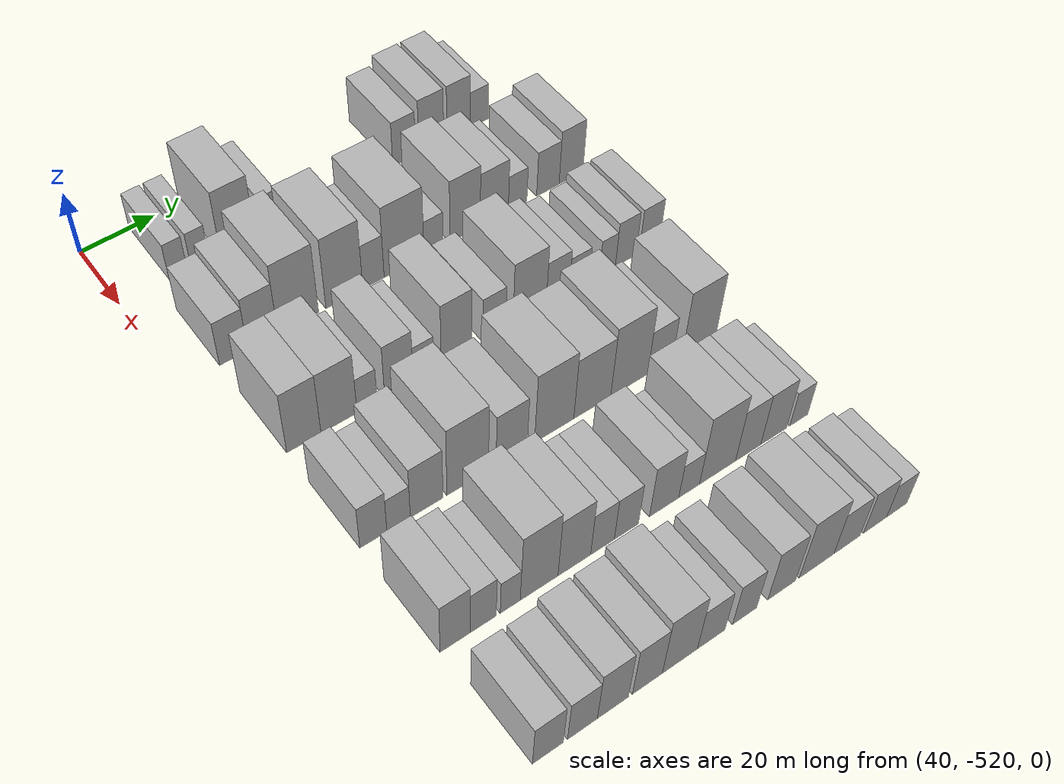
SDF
<sdf version="1.6">
 <world name="default">
  <model name="building_1">
   <static>1</static>
   <pose>50.0000 -504.5289 0 0.000000 0.000000 0.000000</pose>
   <link name="link">
    <pose>0 0 6.00 0 0 0</pose>
    <collision name="collision"><geometry><box><size>20.0000 4.9422 12.0000</size></box></geometry></collision>
    <visual name="visual">
     <cast_shadows>0</cast_shadows>
     <geometry><box><size>20.0000 4.9422 12.0000</size></box></geometry>
     <material>
      <script>
       <uri>model://HANNAS_wall/materials/scripts</uri>
       <uri>model://HANNAS_wall/materials/textures</uri>
       <name>vrc/HANNAS_wall</name>
      </script>
     </material>
    </visual>
   </link>
  </model>
  <model name="building_2">
   <static>1</static>
   <pose>50.0000 -498.5857 0 0.000000 0.000000 0.000000</pose>
   <link name="link">
    <pose>0 0 6.00 0 0 0</pose>
    <collision name="collision"><geometry><box><size>20.0000 4.9442 12.0000</size></box></geometry></collision>
    <visual name="visual">
     <cast_shadows>0</cast_shadows>
     <geometry><box><size>20.0000 4.9442 12.0000</size></box></geometry>
     <material>
      <script>
       <uri>model://HANNAS_wall/materials/scripts</uri>
       <uri>model://HANNAS_wall/materials/textures</uri>
       <name>vrc/HANNAS_wall</name>
      </script>
     </material>
    </visual>
   </link>
  </model>
  <model name="building_3">
   <static>1</static>
   <pose>50.0000 -488.2984 0 0.000000 0.000000 0.000000</pose>
   <link name="link">
    <pose>0 0 10.50 0 0 0</pose>
    <collision name="collision"><geometry><box><size>20.0000 9.6305 21.0000</size></box></geometry></collision>
    <visual name="visual">
     <cast_shadows>0</cast_shadows>
     <geometry><box><size>20.0000 9.6305 21.0000</size></box></geometry>
     <material>
      <script>
       <uri>model://HANNAS_wall/materials/scripts</uri>
       <uri>model://HANNAS_wall/materials/textures</uri>
       <name>vrc/HANNAS_wall</name>
      </script>
     </material>
    </visual>
   </link>
  </model>
  <model name="building_4">
   <static>1</static>
   <pose>50.0000 -478.9975 0 0.000000 0.000000 0.000000</pose>
   <link name="link">
    <pose>0 0 6.00 0 0 0</pose>
    <collision name="collision"><geometry><box><size>20.0000 4.9714 12.0000</size></box></geometry></collision>
    <visual name="visual">
     <cast_shadows>0</cast_shadows>
     <geometry><box><size>20.0000 4.9714 12.0000</size></box></geometry>
     <material>
      <script>
       <uri>model://HANNAS_wall/materials/scripts</uri>
       <uri>model://HANNAS_wall/materials/textures</uri>
       <name>vrc/HANNAS_wall</name>
      </script>
     </material>
    </visual>
   </link>
  </model>
  <model name="building_5">
   <static>1</static>
   <pose>50.0000 -440.1124 0 0.000000 0.000000 0.000000</pose>
   <link name="link">
    <pose>0 0 7.50 0 0 0</pose>
    <collision name="collision"><geometry><box><size>20.0000 6.9329 15.0000</size></box></geometry></collision>
    <visual name="visual">
     <cast_shadows>0</cast_shadows>
     <geometry><box><size>20.0000 6.9329 15.0000</size></box></geometry>
     <material>
      <script>
       <uri>model://HANNAS_wall/materials/scripts</uri>
       <uri>model://HANNAS_wall/materials/textures</uri>
       <name>vrc/HANNAS_wall</name>
      </script>
     </material>
    </visual>
   </link>
  </model>
  <model name="building_6">
   <static>1</static>
   <pose>50.0000 -431.8344 0 0.000000 0.000000 0.000000</pose>
   <link name="link">
    <pose>0 0 9.00 0 0 0</pose>
    <collision name="collision"><geometry><box><size>20.0000 7.6229 18.0000</size></box></geometry></collision>
    <visual name="visual">
     <cast_shadows>0</cast_shadows>
     <geometry><box><size>20.0000 7.6229 18.0000</size></box></geometry>
     <material>
      <script>
       <uri>model://HANNAS_wall/materials/scripts</uri>
       <uri>model://HANNAS_wall/materials/textures</uri>
       <name>vrc/HANNAS_wall</name>
      </script>
     </material>
    </visual>
   </link>
  </model>
  <model name="building_7">
   <static>1</static>
   <pose>50.0000 -423.3520 0 0.000000 0.000000 0.000000</pose>
   <link name="link">
    <pose>0 0 9.00 0 0 0</pose>
    <collision name="collision"><geometry><box><size>20.0000 7.3419 18.0000</size></box></geometry></collision>
    <visual name="visual">
     <cast_shadows>0</cast_shadows>
     <geometry><box><size>20.0000 7.3419 18.0000</size></box></geometry>
     <material>
      <script>
       <uri>model://HANNAS_wall/materials/scripts</uri>
       <uri>model://HANNAS_wall/materials/textures</uri>
       <name>vrc/HANNAS_wall</name>
      </script>
     </material>
    </visual>
   </link>
  </model>
  <model name="building_8">
   <static>1</static>
   <pose>50.0000 -416.8708 0 0.000000 0.000000 0.000000</pose>
   <link name="link">
    <pose>0 0 6.00 0 0 0</pose>
    <collision name="collision"><geometry><box><size>20.0000 5.6204 12.0000</size></box></geometry></collision>
    <visual name="visual">
     <cast_shadows>0</cast_shadows>
     <geometry><box><size>20.0000 5.6204 12.0000</size></box></geometry>
     <material>
      <script>
       <uri>model://HANNAS_wall/materials/scripts</uri>
       <uri>model://HANNAS_wall/materials/textures</uri>
       <name>vrc/HANNAS_wall</name>
      </script>
     </material>
    </visual>
   </link>
  </model>
  <model name="building_118">
   <static>1</static>
   <pose>79.0000 -506.3099 0 0.000000 0.000000 0.000000</pose>
   <link name="link">
    <pose>0 0 7.50 0 0 0</pose>
    <collision name="collision"><geometry><box><size>20.0000 7.3802 15.0000</size></box></geometry></collision>
    <visual name="visual">
     <cast_shadows>0</cast_shadows>
     <geometry><box><size>20.0000 7.3802 15.0000</size></box></geometry>
     <material>
      <script>
       <uri>model://HANNAS_wall/materials/scripts</uri>
       <uri>model://HANNAS_wall/materials/textures</uri>
       <name>vrc/HANNAS_wall</name>
      </script>
     </material>
    </visual>
   </link>
  </model>
  <model name="building_119">
   <static>1</static>
   <pose>79.0000 -498.6249 0 0.000000 0.000000 0.000000</pose>
   <link name="link">
    <pose>0 0 9.00 0 0 0</pose>
    <collision name="collision"><geometry><box><size>20.0000 7.9898 18.0000</size></box></geometry></collision>
    <visual name="visual">
     <cast_shadows>0</cast_shadows>
     <geometry><box><size>20.0000 7.9898 18.0000</size></box></geometry>
     <material>
      <script>
       <uri>model://HANNAS_wall/materials/scripts</uri>
       <uri>model://HANNAS_wall/materials/textures</uri>
       <name>vrc/HANNAS_wall</name>
      </script>
     </material>
    </visual>
   </link>
  </model>
  <model name="building_120">
   <static>1</static>
   <pose>79.0000 -489.1331 0 0.000000 0.000000 0.000000</pose>
   <link name="link">
    <pose>0 0 12.00 0 0 0</pose>
    <collision name="collision"><geometry><box><size>20.0000 10.9938 24.0000</size></box></geometry></collision>
    <visual name="visual">
     <cast_shadows>0</cast_shadows>
     <geometry><box><size>20.0000 10.9938 24.0000</size></box></geometry>
     <material>
      <script>
       <uri>model://HANNAS_wall/materials/scripts</uri>
       <uri>model://HANNAS_wall/materials/textures</uri>
       <name>vrc/HANNAS_wall</name>
      </script>
     </material>
    </visual>
   </link>
  </model>
  <model name="building_121">
   <static>1</static>
   <pose>79.0000 -476.5295 0 0.000000 0.000000 0.000000</pose>
   <link name="link">
    <pose>0 0 12.00 0 0 0</pose>
    <collision name="collision"><geometry><box><size>20.0000 10.2135 24.0000</size></box></geometry></collision>
    <visual name="visual">
     <cast_shadows>0</cast_shadows>
     <geometry><box><size>20.0000 10.2135 24.0000</size></box></geometry>
     <material>
      <script>
       <uri>model://HANNAS_wall/materials/scripts</uri>
       <uri>model://HANNAS_wall/materials/textures</uri>
       <name>vrc/HANNAS_wall</name>
      </script>
     </material>
    </visual>
   </link>
  </model>
  <model name="building_122">
   <static>1</static>
   <pose>79.0000 -468.4200 0 0.000000 0.000000 0.000000</pose>
   <link name="link">
    <pose>0 0 7.50 0 0 0</pose>
    <collision name="collision"><geometry><box><size>20.0000 6.0055 15.0000</size></box></geometry></collision>
    <visual name="visual">
     <cast_shadows>0</cast_shadows>
     <geometry><box><size>20.0000 6.0055 15.0000</size></box></geometry>
     <material>
      <script>
       <uri>model://HANNAS_wall/materials/scripts</uri>
       <uri>model://HANNAS_wall/materials/textures</uri>
       <name>vrc/HANNAS_wall</name>
      </script>
     </material>
    </visual>
   </link>
  </model>
  <model name="building_123">
   <static>1</static>
   <pose>79.0000 -459.7112 0 0.000000 0.000000 0.000000</pose>
   <link name="link">
    <pose>0 0 12.00 0 0 0</pose>
    <collision name="collision"><geometry><box><size>20.0000 11.4121 24.0000</size></box></geometry></collision>
    <visual name="visual">
     <cast_shadows>0</cast_shadows>
     <geometry><box><size>20.0000 11.4121 24.0000</size></box></geometry>
     <material>
      <script>
       <uri>model://HANNAS_wall/materials/scripts</uri>
       <uri>model://HANNAS_wall/materials/textures</uri>
       <name>vrc/HANNAS_wall</name>
      </script>
     </material>
    </visual>
   </link>
  </model>
  <model name="building_124">
   <static>1</static>
   <pose>79.0000 -451.2268 0 0.000000 0.000000 0.000000</pose>
   <link name="link">
    <pose>0 0 6.00 0 0 0</pose>
    <collision name="collision"><geometry><box><size>20.0000 5.5568 12.0000</size></box></geometry></collision>
    <visual name="visual">
     <cast_shadows>0</cast_shadows>
     <geometry><box><size>20.0000 5.5568 12.0000</size></box></geometry>
     <material>
      <script>
       <uri>model://HANNAS_wall/materials/scripts</uri>
       <uri>model://HANNAS_wall/materials/textures</uri>
       <name>vrc/HANNAS_wall</name>
      </script>
     </material>
    </visual>
   </link>
  </model>
  <model name="building_125">
   <static>1</static>
   <pose>79.0000 -441.9780 0 0.000000 0.000000 0.000000</pose>
   <link name="link">
    <pose>0 0 10.50 0 0 0</pose>
    <collision name="collision"><geometry><box><size>20.0000 8.9408 21.0000</size></box></geometry></collision>
    <visual name="visual">
     <cast_shadows>0</cast_shadows>
     <geometry><box><size>20.0000 8.9408 21.0000</size></box></geometry>
     <material>
      <script>
       <uri>model://HANNAS_wall/materials/scripts</uri>
       <uri>model://HANNAS_wall/materials/textures</uri>
       <name>vrc/HANNAS_wall</name>
      </script>
     </material>
    </visual>
   </link>
  </model>
  <model name="building_126">
   <static>1</static>
   <pose>79.0000 -433.2798 0 0.000000 0.000000 0.000000</pose>
   <link name="link">
    <pose>0 0 9.00 0 0 0</pose>
    <collision name="collision"><geometry><box><size>20.0000 8.4557 18.0000</size></box></geometry></collision>
    <visual name="visual">
     <cast_shadows>0</cast_shadows>
     <geometry><box><size>20.0000 8.4557 18.0000</size></box></geometry>
     <material>
      <script>
       <uri>model://HANNAS_wall/materials/scripts</uri>
       <uri>model://HANNAS_wall/materials/textures</uri>
       <name>vrc/HANNAS_wall</name>
      </script>
     </material>
    </visual>
   </link>
  </model>
  <model name="building_127">
   <static>1</static>
   <pose>79.0000 -426.2253 0 0.000000 0.000000 0.000000</pose>
   <link name="link">
    <pose>0 0 6.00 0 0 0</pose>
    <collision name="collision"><geometry><box><size>20.0000 5.6532 12.0000</size></box></geometry></collision>
    <visual name="visual">
     <cast_shadows>0</cast_shadows>
     <geometry><box><size>20.0000 5.6532 12.0000</size></box></geometry>
     <material>
      <script>
       <uri>model://HANNAS_wall/materials/scripts</uri>
       <uri>model://HANNAS_wall/materials/textures</uri>
       <name>vrc/HANNAS_wall</name>
      </script>
     </material>
    </visual>
   </link>
  </model>
  <model name="building_128">
   <static>1</static>
   <pose>79.0000 -416.9028 0 0.000000 0.000000 0.000000</pose>
   <link name="link">
    <pose>0 0 7.50 0 0 0</pose>
    <collision name="collision"><geometry><box><size>20.0000 6.9918 15.0000</size></box></geometry></collision>
    <visual name="visual">
     <cast_shadows>0</cast_shadows>
     <geometry><box><size>20.0000 6.9918 15.0000</size></box></geometry>
     <material>
      <script>
       <uri>model://HANNAS_wall/materials/scripts</uri>
       <uri>model://HANNAS_wall/materials/textures</uri>
       <name>vrc/HANNAS_wall</name>
      </script>
     </material>
    </visual>
   </link>
  </model>
  <model name="building_129">
   <static>1</static>
   <pose>79.0000 -409.6678 0 0.000000 0.000000 0.000000</pose>
   <link name="link">
    <pose>0 0 9.00 0 0 0</pose>
    <collision name="collision"><geometry><box><size>20.0000 7.4782 18.0000</size></box></geometry></collision>
    <visual name="visual">
     <cast_shadows>0</cast_shadows>
     <geometry><box><size>20.0000 7.4782 18.0000</size></box></geometry>
     <material>
      <script>
       <uri>model://HANNAS_wall/materials/scripts</uri>
       <uri>model://HANNAS_wall/materials/textures</uri>
       <name>vrc/HANNAS_wall</name>
      </script>
     </material>
    </visual>
   </link>
  </model>
  <model name="building_232">
   <static>1</static>
   <pose>108.0000 -505.6178 0 0.000000 0.000000 0.000000</pose>
   <link name="link">
    <pose>0 0 10.50 0 0 0</pose>
    <collision name="collision"><geometry><box><size>20.0000 8.7644 21.0000</size></box></geometry></collision>
    <visual name="visual">
     <cast_shadows>0</cast_shadows>
     <geometry><box><size>20.0000 8.7644 21.0000</size></box></geometry>
     <material>
      <script>
       <uri>model://HANNAS_wall/materials/scripts</uri>
       <uri>model://HANNAS_wall/materials/textures</uri>
       <name>vrc/HANNAS_wall</name>
      </script>
     </material>
    </visual>
   </link>
  </model>
  <model name="building_233">
   <static>1</static>
   <pose>108.0000 -496.5510 0 0.000000 0.000000 0.000000</pose>
   <link name="link">
    <pose>0 0 10.50 0 0 0</pose>
    <collision name="collision"><geometry><box><size>20.0000 9.3692 21.0000</size></box></geometry></collision>
    <visual name="visual">
     <cast_shadows>0</cast_shadows>
     <geometry><box><size>20.0000 9.3692 21.0000</size></box></geometry>
     <material>
      <script>
       <uri>model://HANNAS_wall/materials/scripts</uri>
       <uri>model://HANNAS_wall/materials/textures</uri>
       <name>vrc/HANNAS_wall</name>
      </script>
     </material>
    </visual>
   </link>
  </model>
  <model name="building_234">
   <static>1</static>
   <pose>108.0000 -489.2105 0 0.000000 0.000000 0.000000</pose>
   <link name="link">
    <pose>0 0 6.00 0 0 0</pose>
    <collision name="collision"><geometry><box><size>20.0000 5.3119 12.0000</size></box></geometry></collision>
    <visual name="visual">
     <cast_shadows>0</cast_shadows>
     <geometry><box><size>20.0000 5.3119 12.0000</size></box></geometry>
     <material>
      <script>
       <uri>model://HANNAS_wall/materials/scripts</uri>
       <uri>model://HANNAS_wall/materials/textures</uri>
       <name>vrc/HANNAS_wall</name>
      </script>
     </material>
    </visual>
   </link>
  </model>
  <model name="building_235">
   <static>1</static>
   <pose>108.0000 -480.7303 0 0.000000 0.000000 0.000000</pose>
   <link name="link">
    <pose>0 0 9.00 0 0 0</pose>
    <collision name="collision"><geometry><box><size>20.0000 7.6485 18.0000</size></box></geometry></collision>
    <visual name="visual">
     <cast_shadows>0</cast_shadows>
     <geometry><box><size>20.0000 7.6485 18.0000</size></box></geometry>
     <material>
      <script>
       <uri>model://HANNAS_wall/materials/scripts</uri>
       <uri>model://HANNAS_wall/materials/textures</uri>
       <name>vrc/HANNAS_wall</name>
      </script>
     </material>
    </visual>
   </link>
  </model>
  <model name="building_236">
   <static>1</static>
   <pose>108.0000 -474.0782 0 0.000000 0.000000 0.000000</pose>
   <link name="link">
    <pose>0 0 6.00 0 0 0</pose>
    <collision name="collision"><geometry><box><size>20.0000 5.6557 12.0000</size></box></geometry></collision>
    <visual name="visual">
     <cast_shadows>0</cast_shadows>
     <geometry><box><size>20.0000 5.6557 12.0000</size></box></geometry>
     <material>
      <script>
       <uri>model://HANNAS_wall/materials/scripts</uri>
       <uri>model://HANNAS_wall/materials/textures</uri>
       <name>vrc/HANNAS_wall</name>
      </script>
     </material>
    </visual>
   </link>
  </model>
  <model name="building_237">
   <static>1</static>
   <pose>108.0000 -465.0015 0 0.000000 0.000000 0.000000</pose>
   <link name="link">
    <pose>0 0 10.50 0 0 0</pose>
    <collision name="collision"><geometry><box><size>20.0000 8.4977 21.0000</size></box></geometry></collision>
    <visual name="visual">
     <cast_shadows>0</cast_shadows>
     <geometry><box><size>20.0000 8.4977 21.0000</size></box></geometry>
     <material>
      <script>
       <uri>model://HANNAS_wall/materials/scripts</uri>
       <uri>model://HANNAS_wall/materials/textures</uri>
       <name>vrc/HANNAS_wall</name>
      </script>
     </material>
    </visual>
   </link>
  </model>
  <model name="building_238">
   <static>1</static>
   <pose>108.0000 -454.4411 0 0.000000 0.000000 0.000000</pose>
   <link name="link">
    <pose>0 0 7.50 0 0 0</pose>
    <collision name="collision"><geometry><box><size>20.0000 6.6231 15.0000</size></box></geometry></collision>
    <visual name="visual">
     <cast_shadows>0</cast_shadows>
     <geometry><box><size>20.0000 6.6231 15.0000</size></box></geometry>
     <material>
      <script>
       <uri>model://HANNAS_wall/materials/scripts</uri>
       <uri>model://HANNAS_wall/materials/textures</uri>
       <name>vrc/HANNAS_wall</name>
      </script>
     </material>
    </visual>
   </link>
  </model>
  <model name="building_239">
   <static>1</static>
   <pose>108.0000 -444.3253 0 0.000000 0.000000 0.000000</pose>
   <link name="link">
    <pose>0 0 10.50 0 0 0</pose>
    <collision name="collision"><geometry><box><size>20.0000 9.6084 21.0000</size></box></geometry></collision>
    <visual name="visual">
     <cast_shadows>0</cast_shadows>
     <geometry><box><size>20.0000 9.6084 21.0000</size></box></geometry>
     <material>
      <script>
       <uri>model://HANNAS_wall/materials/scripts</uri>
       <uri>model://HANNAS_wall/materials/textures</uri>
       <name>vrc/HANNAS_wall</name>
      </script>
     </material>
    </visual>
   </link>
  </model>
  <model name="building_240">
   <static>1</static>
   <pose>108.0000 -436.1266 0 0.000000 0.000000 0.000000</pose>
   <link name="link">
    <pose>0 0 7.50 0 0 0</pose>
    <collision name="collision"><geometry><box><size>20.0000 6.7891 15.0000</size></box></geometry></collision>
    <visual name="visual">
     <cast_shadows>0</cast_shadows>
     <geometry><box><size>20.0000 6.7891 15.0000</size></box></geometry>
     <material>
      <script>
       <uri>model://HANNAS_wall/materials/scripts</uri>
       <uri>model://HANNAS_wall/materials/textures</uri>
       <name>vrc/HANNAS_wall</name>
      </script>
     </material>
    </visual>
   </link>
  </model>
  <model name="building_241">
   <static>1</static>
   <pose>108.0000 -429.7435 0 0.000000 0.000000 0.000000</pose>
   <link name="link">
    <pose>0 0 6.00 0 0 0</pose>
    <collision name="collision"><geometry><box><size>20.0000 5.9769 12.0000</size></box></geometry></collision>
    <visual name="visual">
     <cast_shadows>0</cast_shadows>
     <geometry><box><size>20.0000 5.9769 12.0000</size></box></geometry>
     <material>
      <script>
       <uri>model://HANNAS_wall/materials/scripts</uri>
       <uri>model://HANNAS_wall/materials/textures</uri>
       <name>vrc/HANNAS_wall</name>
      </script>
     </material>
    </visual>
   </link>
  </model>
  <model name="building_242">
   <static>1</static>
   <pose>108.0000 -421.3235 0 0.000000 0.000000 0.000000</pose>
   <link name="link">
    <pose>0 0 6.00 0 0 0</pose>
    <collision name="collision"><geometry><box><size>20.0000 4.8630 12.0000</size></box></geometry></collision>
    <visual name="visual">
     <cast_shadows>0</cast_shadows>
     <geometry><box><size>20.0000 4.8630 12.0000</size></box></geometry>
     <material>
      <script>
       <uri>model://HANNAS_wall/materials/scripts</uri>
       <uri>model://HANNAS_wall/materials/textures</uri>
       <name>vrc/HANNAS_wall</name>
      </script>
     </material>
    </visual>
   </link>
  </model>
  <model name="building_243">
   <static>1</static>
   <pose>108.0000 -415.7556 0 0.000000 0.000000 0.000000</pose>
   <link name="link">
    <pose>0 0 7.50 0 0 0</pose>
    <collision name="collision"><geometry><box><size>20.0000 6.2729 15.0000</size></box></geometry></collision>
    <visual name="visual">
     <cast_shadows>0</cast_shadows>
     <geometry><box><size>20.0000 6.2729 15.0000</size></box></geometry>
     <material>
      <script>
       <uri>model://HANNAS_wall/materials/scripts</uri>
       <uri>model://HANNAS_wall/materials/textures</uri>
       <name>vrc/HANNAS_wall</name>
      </script>
     </material>
    </visual>
   </link>
  </model>
  <model name="building_244">
   <static>1</static>
   <pose>108.0000 -408.4416 0 0.000000 0.000000 0.000000</pose>
   <link name="link">
    <pose>0 0 7.50 0 0 0</pose>
    <collision name="collision"><geometry><box><size>20.0000 6.3550 15.0000</size></box></geometry></collision>
    <visual name="visual">
     <cast_shadows>0</cast_shadows>
     <geometry><box><size>20.0000 6.3550 15.0000</size></box></geometry>
     <material>
      <script>
       <uri>model://HANNAS_wall/materials/scripts</uri>
       <uri>model://HANNAS_wall/materials/textures</uri>
       <name>vrc/HANNAS_wall</name>
      </script>
     </material>
    </visual>
   </link>
  </model>
  <model name="building_341">
   <static>1</static>
   <pose>137.0000 -506.6438 0 0.000000 0.000000 0.000000</pose>
   <link name="link">
    <pose>0 0 7.50 0 0 0</pose>
    <collision name="collision"><geometry><box><size>20.0000 6.7123 15.0000</size></box></geometry></collision>
    <visual name="visual">
     <cast_shadows>0</cast_shadows>
     <geometry><box><size>20.0000 6.7123 15.0000</size></box></geometry>
     <material>
      <script>
       <uri>model://HANNAS_wall/materials/scripts</uri>
       <uri>model://HANNAS_wall/materials/textures</uri>
       <name>vrc/HANNAS_wall</name>
      </script>
     </material>
    </visual>
   </link>
  </model>
  <model name="building_342">
   <static>1</static>
   <pose>137.0000 -500.3289 0 0.000000 0.000000 0.000000</pose>
   <link name="link">
    <pose>0 0 6.00 0 0 0</pose>
    <collision name="collision"><geometry><box><size>20.0000 5.9175 12.0000</size></box></geometry></collision>
    <visual name="visual">
     <cast_shadows>0</cast_shadows>
     <geometry><box><size>20.0000 5.9175 12.0000</size></box></geometry>
     <material>
      <script>
       <uri>model://HANNAS_wall/materials/scripts</uri>
       <uri>model://HANNAS_wall/materials/textures</uri>
       <name>vrc/HANNAS_wall</name>
      </script>
     </material>
    </visual>
   </link>
  </model>
  <model name="building_343">
   <static>1</static>
   <pose>137.0000 -493.1966 0 0.000000 0.000000 0.000000</pose>
   <link name="link">
    <pose>0 0 9.00 0 0 0</pose>
    <collision name="collision"><geometry><box><size>20.0000 8.3471 18.0000</size></box></geometry></collision>
    <visual name="visual">
     <cast_shadows>0</cast_shadows>
     <geometry><box><size>20.0000 8.3471 18.0000</size></box></geometry>
     <material>
      <script>
       <uri>model://HANNAS_wall/materials/scripts</uri>
       <uri>model://HANNAS_wall/materials/textures</uri>
       <name>vrc/HANNAS_wall</name>
      </script>
     </material>
    </visual>
   </link>
  </model>
  <model name="building_344">
   <static>1</static>
   <pose>137.0000 -482.5880 0 0.000000 0.000000 0.000000</pose>
   <link name="link">
    <pose>0 0 12.00 0 0 0</pose>
    <collision name="collision"><geometry><box><size>20.0000 10.8700 24.0000</size></box></geometry></collision>
    <visual name="visual">
     <cast_shadows>0</cast_shadows>
     <geometry><box><size>20.0000 10.8700 24.0000</size></box></geometry>
     <material>
      <script>
       <uri>model://HANNAS_wall/materials/scripts</uri>
       <uri>model://HANNAS_wall/materials/textures</uri>
       <name>vrc/HANNAS_wall</name>
      </script>
     </material>
    </visual>
   </link>
  </model>
  <model name="building_345">
   <static>1</static>
   <pose>137.0000 -470.9587 0 0.000000 0.000000 0.000000</pose>
   <link name="link">
    <pose>0 0 9.00 0 0 0</pose>
    <collision name="collision"><geometry><box><size>20.0000 8.3888 18.0000</size></box></geometry></collision>
    <visual name="visual">
     <cast_shadows>0</cast_shadows>
     <geometry><box><size>20.0000 8.3888 18.0000</size></box></geometry>
     <material>
      <script>
       <uri>model://HANNAS_wall/materials/scripts</uri>
       <uri>model://HANNAS_wall/materials/textures</uri>
       <name>vrc/HANNAS_wall</name>
      </script>
     </material>
    </visual>
   </link>
  </model>
  <model name="building_346">
   <static>1</static>
   <pose>137.0000 -459.3654 0 0.000000 0.000000 0.000000</pose>
   <link name="link">
    <pose>0 0 12.00 0 0 0</pose>
    <collision name="collision"><geometry><box><size>20.0000 10.7978 24.0000</size></box></geometry></collision>
    <visual name="visual">
     <cast_shadows>0</cast_shadows>
     <geometry><box><size>20.0000 10.7978 24.0000</size></box></geometry>
     <material>
      <script>
       <uri>model://HANNAS_wall/materials/scripts</uri>
       <uri>model://HANNAS_wall/materials/textures</uri>
       <name>vrc/HANNAS_wall</name>
      </script>
     </material>
    </visual>
   </link>
  </model>
  <model name="building_347">
   <static>1</static>
   <pose>137.0000 -448.7663 0 0.000000 0.000000 0.000000</pose>
   <link name="link">
    <pose>0 0 10.50 0 0 0</pose>
    <collision name="collision"><geometry><box><size>20.0000 10.4005 21.0000</size></box></geometry></collision>
    <visual name="visual">
     <cast_shadows>0</cast_shadows>
     <geometry><box><size>20.0000 10.4005 21.0000</size></box></geometry>
     <material>
      <script>
       <uri>model://HANNAS_wall/materials/scripts</uri>
       <uri>model://HANNAS_wall/materials/textures</uri>
       <name>vrc/HANNAS_wall</name>
      </script>
     </material>
    </visual>
   </link>
  </model>
  <model name="building_348">
   <static>1</static>
   <pose>137.0000 -438.2640 0 0.000000 0.000000 0.000000</pose>
   <link name="link">
    <pose>0 0 12.00 0 0 0</pose>
    <collision name="collision"><geometry><box><size>20.0000 10.6040 24.0000</size></box></geometry></collision>
    <visual name="visual">
     <cast_shadows>0</cast_shadows>
     <geometry><box><size>20.0000 10.6040 24.0000</size></box></geometry>
     <material>
      <script>
       <uri>model://HANNAS_wall/materials/scripts</uri>
       <uri>model://HANNAS_wall/materials/textures</uri>
       <name>vrc/HANNAS_wall</name>
      </script>
     </material>
    </visual>
   </link>
  </model>
  <model name="building_349">
   <static>1</static>
   <pose>137.0000 -429.3022 0 0.000000 0.000000 0.000000</pose>
   <link name="link">
    <pose>0 0 7.50 0 0 0</pose>
    <collision name="collision"><geometry><box><size>20.0000 7.3195 15.0000</size></box></geometry></collision>
    <visual name="visual">
     <cast_shadows>0</cast_shadows>
     <geometry><box><size>20.0000 7.3195 15.0000</size></box></geometry>
     <material>
      <script>
       <uri>model://HANNAS_wall/materials/scripts</uri>
       <uri>model://HANNAS_wall/materials/textures</uri>
       <name>vrc/HANNAS_wall</name>
      </script>
     </material>
    </visual>
   </link>
  </model>
  <model name="building_350">
   <static>1</static>
   <pose>137.0000 -417.5942 0 0.000000 0.000000 0.000000</pose>
   <link name="link">
    <pose>0 0 10.50 0 0 0</pose>
    <collision name="collision"><geometry><box><size>20.0000 10.0965 21.0000</size></box></geometry></collision>
    <visual name="visual">
     <cast_shadows>0</cast_shadows>
     <geometry><box><size>20.0000 10.0965 21.0000</size></box></geometry>
     <material>
      <script>
       <uri>model://HANNAS_wall/materials/scripts</uri>
       <uri>model://HANNAS_wall/materials/textures</uri>
       <name>vrc/HANNAS_wall</name>
      </script>
     </material>
    </visual>
   </link>
  </model>
  <model name="building_462">
   <static>1</static>
   <pose>166.0000 -506.3015 0 0.000000 0.000000 0.000000</pose>
   <link name="link">
    <pose>0 0 9.00 0 0 0</pose>
    <collision name="collision"><geometry><box><size>20.0000 7.3969 18.0000</size></box></geometry></collision>
    <visual name="visual">
     <cast_shadows>0</cast_shadows>
     <geometry><box><size>20.0000 7.3969 18.0000</size></box></geometry>
     <material>
      <script>
       <uri>model://HANNAS_wall/materials/scripts</uri>
       <uri>model://HANNAS_wall/materials/textures</uri>
       <name>vrc/HANNAS_wall</name>
      </script>
     </material>
    </visual>
   </link>
  </model>
  <model name="building_463">
   <static>1</static>
   <pose>166.0000 -499.4351 0 0.000000 0.000000 0.000000</pose>
   <link name="link">
    <pose>0 0 7.50 0 0 0</pose>
    <collision name="collision"><geometry><box><size>20.0000 6.3360 15.0000</size></box></geometry></collision>
    <visual name="visual">
     <cast_shadows>0</cast_shadows>
     <geometry><box><size>20.0000 6.3360 15.0000</size></box></geometry>
     <material>
      <script>
       <uri>model://HANNAS_wall/materials/scripts</uri>
       <uri>model://HANNAS_wall/materials/textures</uri>
       <name>vrc/HANNAS_wall</name>
      </script>
     </material>
    </visual>
   </link>
  </model>
  <model name="building_464">
   <static>1</static>
   <pose>166.0000 -492.7609 0 0.000000 0.000000 0.000000</pose>
   <link name="link">
    <pose>0 0 6.00 0 0 0</pose>
    <collision name="collision"><geometry><box><size>20.0000 5.0124 12.0000</size></box></geometry></collision>
    <visual name="visual">
     <cast_shadows>0</cast_shadows>
     <geometry><box><size>20.0000 5.0124 12.0000</size></box></geometry>
     <material>
      <script>
       <uri>model://HANNAS_wall/materials/scripts</uri>
       <uri>model://HANNAS_wall/materials/textures</uri>
       <name>vrc/HANNAS_wall</name>
      </script>
     </material>
    </visual>
   </link>
  </model>
  <model name="building_465">
   <static>1</static>
   <pose>166.0000 -485.4518 0 0.000000 0.000000 0.000000</pose>
   <link name="link">
    <pose>0 0 12.00 0 0 0</pose>
    <collision name="collision"><geometry><box><size>20.0000 9.6058 24.0000</size></box></geometry></collision>
    <visual name="visual">
     <cast_shadows>0</cast_shadows>
     <geometry><box><size>20.0000 9.6058 24.0000</size></box></geometry>
     <material>
      <script>
       <uri>model://HANNAS_wall/materials/scripts</uri>
       <uri>model://HANNAS_wall/materials/textures</uri>
       <name>vrc/HANNAS_wall</name>
      </script>
     </material>
    </visual>
   </link>
  </model>
  <model name="building_466">
   <static>1</static>
   <pose>166.0000 -476.4010 0 0.000000 0.000000 0.000000</pose>
   <link name="link">
    <pose>0 0 10.50 0 0 0</pose>
    <collision name="collision"><geometry><box><size>20.0000 8.4957 21.0000</size></box></geometry></collision>
    <visual name="visual">
     <cast_shadows>0</cast_shadows>
     <geometry><box><size>20.0000 8.4957 21.0000</size></box></geometry>
     <material>
      <script>
       <uri>model://HANNAS_wall/materials/scripts</uri>
       <uri>model://HANNAS_wall/materials/textures</uri>
       <name>vrc/HANNAS_wall</name>
      </script>
     </material>
    </visual>
   </link>
  </model>
  <model name="building_467">
   <static>1</static>
   <pose>166.0000 -469.0213 0 0.000000 0.000000 0.000000</pose>
   <link name="link">
    <pose>0 0 7.50 0 0 0</pose>
    <collision name="collision"><geometry><box><size>20.0000 6.2637 15.0000</size></box></geometry></collision>
    <visual name="visual">
     <cast_shadows>0</cast_shadows>
     <geometry><box><size>20.0000 6.2637 15.0000</size></box></geometry>
     <material>
      <script>
       <uri>model://HANNAS_wall/materials/scripts</uri>
       <uri>model://HANNAS_wall/materials/textures</uri>
       <name>vrc/HANNAS_wall</name>
      </script>
     </material>
    </visual>
   </link>
  </model>
  <model name="building_468">
   <static>1</static>
   <pose>166.0000 -462.6658 0 0.000000 0.000000 0.000000</pose>
   <link name="link">
    <pose>0 0 7.50 0 0 0</pose>
    <collision name="collision"><geometry><box><size>20.0000 6.4474 15.0000</size></box></geometry></collision>
    <visual name="visual">
     <cast_shadows>0</cast_shadows>
     <geometry><box><size>20.0000 6.4474 15.0000</size></box></geometry>
     <material>
      <script>
       <uri>model://HANNAS_wall/materials/scripts</uri>
       <uri>model://HANNAS_wall/materials/textures</uri>
       <name>vrc/HANNAS_wall</name>
      </script>
     </material>
    </visual>
   </link>
  </model>
  <model name="building_469">
   <static>1</static>
   <pose>166.0000 -452.4233 0 0.000000 0.000000 0.000000</pose>
   <link name="link">
    <pose>0 0 9.00 0 0 0</pose>
    <collision name="collision"><geometry><box><size>20.0000 8.0376 18.0000</size></box></geometry></collision>
    <visual name="visual">
     <cast_shadows>0</cast_shadows>
     <geometry><box><size>20.0000 8.0376 18.0000</size></box></geometry>
     <material>
      <script>
       <uri>model://HANNAS_wall/materials/scripts</uri>
       <uri>model://HANNAS_wall/materials/textures</uri>
       <name>vrc/HANNAS_wall</name>
      </script>
     </material>
    </visual>
   </link>
  </model>
  <model name="building_470">
   <static>1</static>
   <pose>166.0000 -445.5121 0 0.000000 0.000000 0.000000</pose>
   <link name="link">
    <pose>0 0 6.00 0 0 0</pose>
    <collision name="collision"><geometry><box><size>20.0000 5.7846 12.0000</size></box></geometry></collision>
    <visual name="visual">
     <cast_shadows>0</cast_shadows>
     <geometry><box><size>20.0000 5.7846 12.0000</size></box></geometry>
     <material>
      <script>
       <uri>model://HANNAS_wall/materials/scripts</uri>
       <uri>model://HANNAS_wall/materials/textures</uri>
       <name>vrc/HANNAS_wall</name>
      </script>
     </material>
    </visual>
   </link>
  </model>
  <model name="building_471">
   <static>1</static>
   <pose>166.0000 -437.5128 0 0.000000 0.000000 0.000000</pose>
   <link name="link">
    <pose>0 0 12.00 0 0 0</pose>
    <collision name="collision"><geometry><box><size>20.0000 10.2141 24.0000</size></box></geometry></collision>
    <visual name="visual">
     <cast_shadows>0</cast_shadows>
     <geometry><box><size>20.0000 10.2141 24.0000</size></box></geometry>
     <material>
      <script>
       <uri>model://HANNAS_wall/materials/scripts</uri>
       <uri>model://HANNAS_wall/materials/textures</uri>
       <name>vrc/HANNAS_wall</name>
      </script>
     </material>
    </visual>
   </link>
  </model>
  <model name="building_472">
   <static>1</static>
   <pose>166.0000 -428.7735 0 0.000000 0.000000 0.000000</pose>
   <link name="link">
    <pose>0 0 9.00 0 0 0</pose>
    <collision name="collision"><geometry><box><size>20.0000 7.2646 18.0000</size></box></geometry></collision>
    <visual name="visual">
     <cast_shadows>0</cast_shadows>
     <geometry><box><size>20.0000 7.2646 18.0000</size></box></geometry>
     <material>
      <script>
       <uri>model://HANNAS_wall/materials/scripts</uri>
       <uri>model://HANNAS_wall/materials/textures</uri>
       <name>vrc/HANNAS_wall</name>
      </script>
     </material>
    </visual>
   </link>
  </model>
  <model name="building_473">
   <static>1</static>
   <pose>166.0000 -421.3706 0 0.000000 0.000000 0.000000</pose>
   <link name="link">
    <pose>0 0 9.00 0 0 0</pose>
    <collision name="collision"><geometry><box><size>20.0000 7.5412 18.0000</size></box></geometry></collision>
    <visual name="visual">
     <cast_shadows>0</cast_shadows>
     <geometry><box><size>20.0000 7.5412 18.0000</size></box></geometry>
     <material>
      <script>
       <uri>model://HANNAS_wall/materials/scripts</uri>
       <uri>model://HANNAS_wall/materials/textures</uri>
       <name>vrc/HANNAS_wall</name>
      </script>
     </material>
    </visual>
   </link>
  </model>
  <model name="building_474">
   <static>1</static>
   <pose>166.0000 -413.9434 0 0.000000 0.000000 0.000000</pose>
   <link name="link">
    <pose>0 0 6.00 0 0 0</pose>
    <collision name="collision"><geometry><box><size>20.0000 5.3131 12.0000</size></box></geometry></collision>
    <visual name="visual">
     <cast_shadows>0</cast_shadows>
     <geometry><box><size>20.0000 5.3131 12.0000</size></box></geometry>
     <material>
      <script>
       <uri>model://HANNAS_wall/materials/scripts</uri>
       <uri>model://HANNAS_wall/materials/textures</uri>
       <name>vrc/HANNAS_wall</name>
      </script>
     </material>
    </visual>
   </link>
  </model>
  <model name="building_586">
   <static>1</static>
   <pose>195.0000 -505.3165 0 0.000000 0.000000 0.000000</pose>
   <link name="link">
    <pose>0 0 7.50 0 0 0</pose>
    <collision name="collision"><geometry><box><size>20.0000 7.3669 15.0000</size></box></geometry></collision>
    <visual name="visual">
     <cast_shadows>0</cast_shadows>
     <geometry><box><size>20.0000 7.3669 15.0000</size></box></geometry>
     <material>
      <script>
       <uri>model://HANNAS_wall/materials/scripts</uri>
       <uri>model://HANNAS_wall/materials/textures</uri>
       <name>vrc/HANNAS_wall</name>
      </script>
     </material>
    </visual>
   </link>
  </model>
  <model name="building_587">
   <static>1</static>
   <pose>195.0000 -497.0126 0 0.000000 0.000000 0.000000</pose>
   <link name="link">
    <pose>0 0 7.50 0 0 0</pose>
    <collision name="collision"><geometry><box><size>20.0000 7.2409 15.0000</size></box></geometry></collision>
    <visual name="visual">
     <cast_shadows>0</cast_shadows>
     <geometry><box><size>20.0000 7.2409 15.0000</size></box></geometry>
     <material>
      <script>
       <uri>model://HANNAS_wall/materials/scripts</uri>
       <uri>model://HANNAS_wall/materials/textures</uri>
       <name>vrc/HANNAS_wall</name>
      </script>
     </material>
    </visual>
   </link>
  </model>
  <model name="building_588">
   <static>1</static>
   <pose>195.0000 -489.5569 0 0.000000 0.000000 0.000000</pose>
   <link name="link">
    <pose>0 0 9.00 0 0 0</pose>
    <collision name="collision"><geometry><box><size>20.0000 7.6707 18.0000</size></box></geometry></collision>
    <visual name="visual">
     <cast_shadows>0</cast_shadows>
     <geometry><box><size>20.0000 7.6707 18.0000</size></box></geometry>
     <material>
      <script>
       <uri>model://HANNAS_wall/materials/scripts</uri>
       <uri>model://HANNAS_wall/materials/textures</uri>
       <name>vrc/HANNAS_wall</name>
      </script>
     </material>
    </visual>
   </link>
  </model>
  <model name="building_589">
   <static>1</static>
   <pose>195.0000 -480.9521 0 0.000000 0.000000 0.000000</pose>
   <link name="link">
    <pose>0 0 9.00 0 0 0</pose>
    <collision name="collision"><geometry><box><size>20.0000 7.5389 18.0000</size></box></geometry></collision>
    <visual name="visual">
     <cast_shadows>0</cast_shadows>
     <geometry><box><size>20.0000 7.5389 18.0000</size></box></geometry>
     <material>
      <script>
       <uri>model://HANNAS_wall/materials/scripts</uri>
       <uri>model://HANNAS_wall/materials/textures</uri>
       <name>vrc/HANNAS_wall</name>
      </script>
     </material>
    </visual>
   </link>
  </model>
  <model name="building_590">
   <static>1</static>
   <pose>195.0000 -472.6724 0 0.000000 0.000000 0.000000</pose>
   <link name="link">
    <pose>0 0 10.50 0 0 0</pose>
    <collision name="collision"><geometry><box><size>20.0000 9.0206 21.0000</size></box></geometry></collision>
    <visual name="visual">
     <cast_shadows>0</cast_shadows>
     <geometry><box><size>20.0000 9.0206 21.0000</size></box></geometry>
     <material>
      <script>
       <uri>model://HANNAS_wall/materials/scripts</uri>
       <uri>model://HANNAS_wall/materials/textures</uri>
       <name>vrc/HANNAS_wall</name>
      </script>
     </material>
    </visual>
   </link>
  </model>
  <model name="building_591">
   <static>1</static>
   <pose>195.0000 -464.5439 0 0.000000 0.000000 0.000000</pose>
   <link name="link">
    <pose>0 0 7.50 0 0 0</pose>
    <collision name="collision"><geometry><box><size>20.0000 7.2365 15.0000</size></box></geometry></collision>
    <visual name="visual">
     <cast_shadows>0</cast_shadows>
     <geometry><box><size>20.0000 7.2365 15.0000</size></box></geometry>
     <material>
      <script>
       <uri>model://HANNAS_wall/materials/scripts</uri>
       <uri>model://HANNAS_wall/materials/textures</uri>
       <name>vrc/HANNAS_wall</name>
      </script>
     </material>
    </visual>
   </link>
  </model>
  <model name="building_592">
   <static>1</static>
   <pose>195.0000 -455.6982 0 0.000000 0.000000 0.000000</pose>
   <link name="link">
    <pose>0 0 7.50 0 0 0</pose>
    <collision name="collision"><geometry><box><size>20.0000 6.4548 15.0000</size></box></geometry></collision>
    <visual name="visual">
     <cast_shadows>0</cast_shadows>
     <geometry><box><size>20.0000 6.4548 15.0000</size></box></geometry>
     <material>
      <script>
       <uri>model://HANNAS_wall/materials/scripts</uri>
       <uri>model://HANNAS_wall/materials/textures</uri>
       <name>vrc/HANNAS_wall</name>
      </script>
     </material>
    </visual>
   </link>
  </model>
  <model name="building_593">
   <static>1</static>
   <pose>195.0000 -445.6552 0 0.000000 0.000000 0.000000</pose>
   <link name="link">
    <pose>0 0 9.00 0 0 0</pose>
    <collision name="collision"><geometry><box><size>20.0000 7.6312 18.0000</size></box></geometry></collision>
    <visual name="visual">
     <cast_shadows>0</cast_shadows>
     <geometry><box><size>20.0000 7.6312 18.0000</size></box></geometry>
     <material>
      <script>
       <uri>model://HANNAS_wall/materials/scripts</uri>
       <uri>model://HANNAS_wall/materials/textures</uri>
       <name>vrc/HANNAS_wall</name>
      </script>
     </material>
    </visual>
   </link>
  </model>
  <model name="building_594">
   <static>1</static>
   <pose>195.0000 -436.0139 0 0.000000 0.000000 0.000000</pose>
   <link name="link">
    <pose>0 0 10.50 0 0 0</pose>
    <collision name="collision"><geometry><box><size>20.0000 9.6513 21.0000</size></box></geometry></collision>
    <visual name="visual">
     <cast_shadows>0</cast_shadows>
     <geometry><box><size>20.0000 9.6513 21.0000</size></box></geometry>
     <material>
      <script>
       <uri>model://HANNAS_wall/materials/scripts</uri>
       <uri>model://HANNAS_wall/materials/textures</uri>
       <name>vrc/HANNAS_wall</name>
      </script>
     </material>
    </visual>
   </link>
  </model>
  <model name="building_595">
   <static>1</static>
   <pose>195.0000 -427.4572 0 0.000000 0.000000 0.000000</pose>
   <link name="link">
    <pose>0 0 7.50 0 0 0</pose>
    <collision name="collision"><geometry><box><size>20.0000 7.4623 15.0000</size></box></geometry></collision>
    <visual name="visual">
     <cast_shadows>0</cast_shadows>
     <geometry><box><size>20.0000 7.4623 15.0000</size></box></geometry>
     <material>
      <script>
       <uri>model://HANNAS_wall/materials/scripts</uri>
       <uri>model://HANNAS_wall/materials/textures</uri>
       <name>vrc/HANNAS_wall</name>
      </script>
     </material>
    </visual>
   </link>
  </model>
  <model name="building_596">
   <static>1</static>
   <pose>195.0000 -419.3513 0 0.000000 0.000000 0.000000</pose>
   <link name="link">
    <pose>0 0 7.50 0 0 0</pose>
    <collision name="collision"><geometry><box><size>20.0000 6.7493 15.0000</size></box></geometry></collision>
    <visual name="visual">
     <cast_shadows>0</cast_shadows>
     <geometry><box><size>20.0000 6.7493 15.0000</size></box></geometry>
     <material>
      <script>
       <uri>model://HANNAS_wall/materials/scripts</uri>
       <uri>model://HANNAS_wall/materials/textures</uri>
       <name>vrc/HANNAS_wall</name>
      </script>
     </material>
    </visual>
   </link>
  </model>
  <model name="building_597">
   <static>1</static>
   <pose>195.0000 -413.0052 0 0.000000 0.000000 0.000000</pose>
   <link name="link">
    <pose>0 0 6.00 0 0 0</pose>
    <collision name="collision"><geometry><box><size>20.0000 5.9429 12.0000</size></box></geometry></collision>
    <visual name="visual">
     <cast_shadows>0</cast_shadows>
     <geometry><box><size>20.0000 5.9429 12.0000</size></box></geometry>
     <material>
      <script>
       <uri>model://HANNAS_wall/materials/scripts</uri>
       <uri>model://HANNAS_wall/materials/textures</uri>
       <name>vrc/HANNAS_wall</name>
      </script>
     </material>
    </visual>
   </link>
  </model>
 </world>
</sdf>
